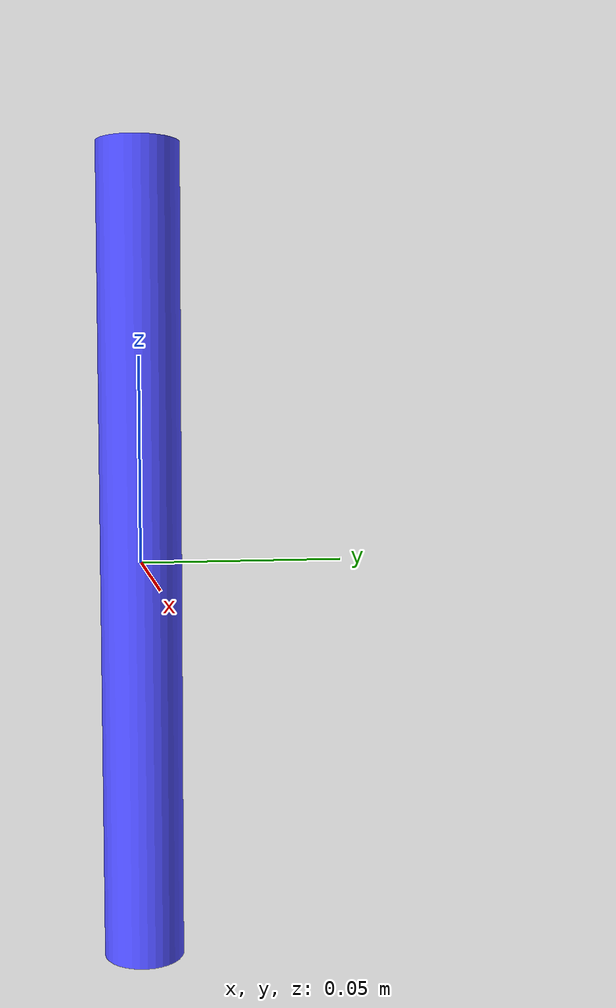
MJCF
<mujoco model="hanoi_cylinder">
  <asset>
    <mesh file="meshes/hanoi_cylinder.stl" name="hanoi_cylinder_mesh" scale="0.5 0.5 1.0"/>
  </asset>
  <worldbody>
    <body>
      <body name="collision">
        <geom pos="0 0 0" mesh="hanoi_cylinder_mesh" rgba="0.3 0.3 1 1" type="mesh" solimp="0.998 0.998 0.001" solref="0.001 1" density="100" friction="0.95 0.3 0.1" group="1" condim="4"/>
      </body>
      <body name="visual">
        <geom pos="0 0 0" mesh="hanoi_cylinder_mesh" type="mesh" solimp="0.998 0.998 0.001" solref="0.001 1" density="100" friction="0.95 0.3 0.1" group="0" condim="4"/>
        <geom pos="0 0 0" mesh="hanoi_cylinder_mesh" type="mesh" solimp="0.998 0.998 0.001" solref="0.001 1" density="100" friction="0.95 0.3 0.1" group="1" condim="4"/>
      </body>

    </body>
  </worldbody>
</mujoco>
